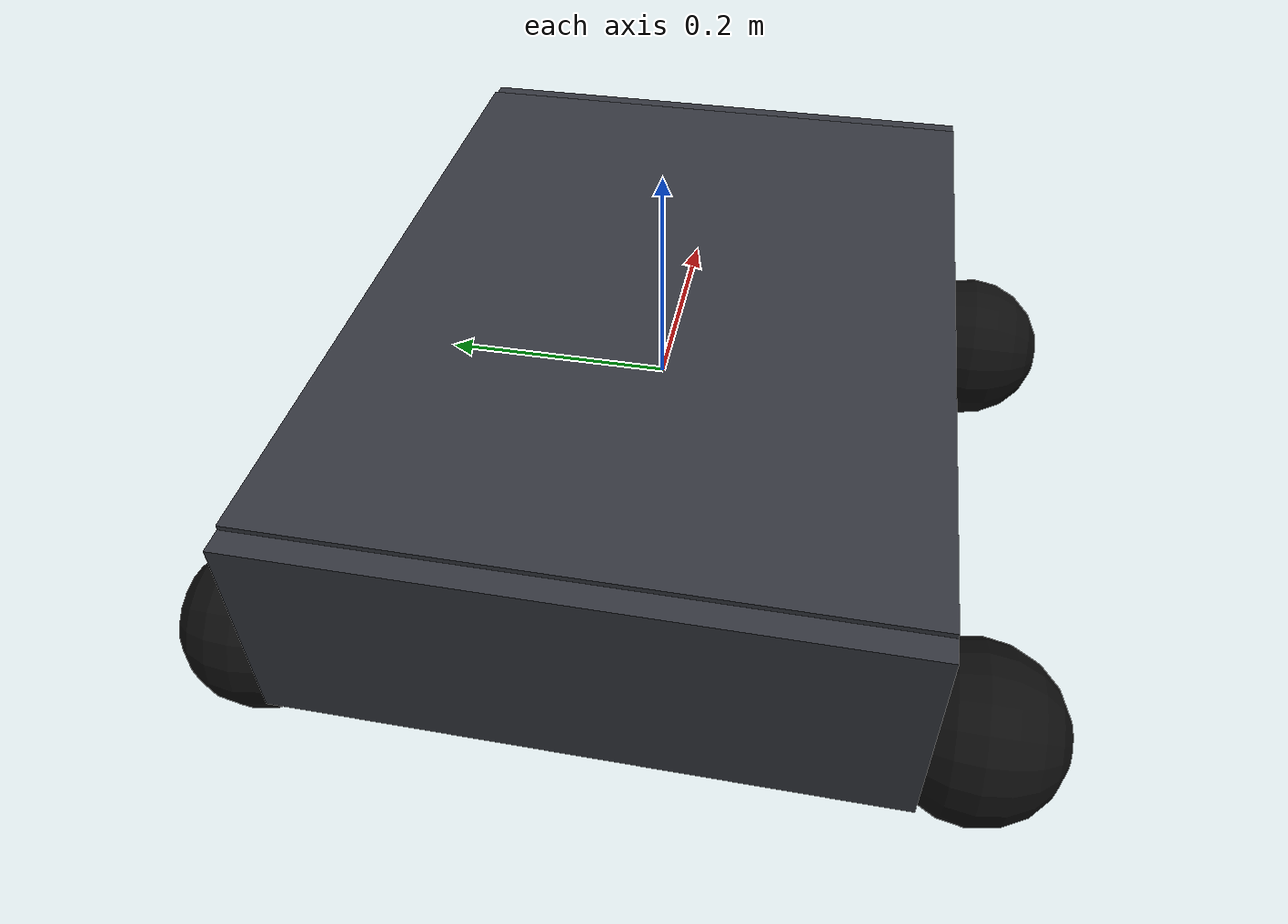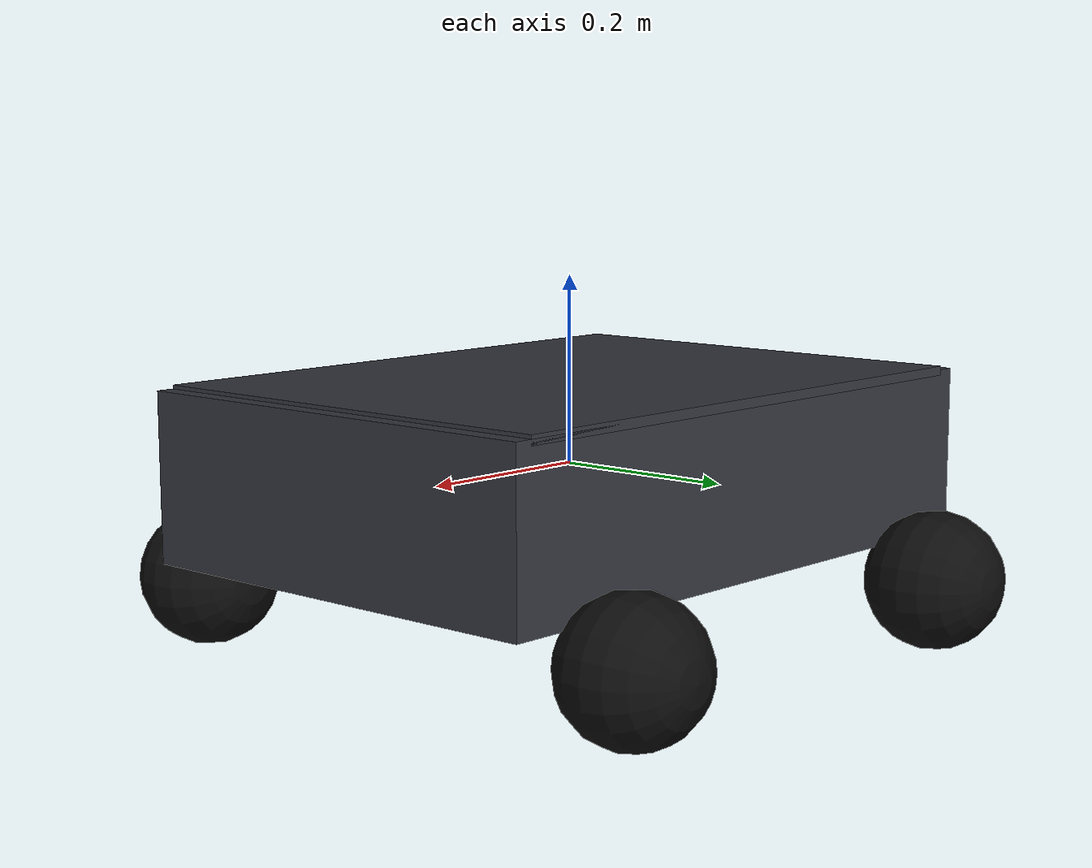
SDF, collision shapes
<?xml version="1.0" ?>
<sdf version="1.9">
  <model name="rover">
      <link name="base_link">
        <pose>0.00000 0.00000 0.00000 0.00000 0.00000 0.00000</pose>
        <inertial><pose>0.00000 0.00000 -0.04000 0.00000 0.00000 0.00000</pose><mass>22.000</mass><inertia><ixx>0.51773</ixx><iyy>0.95773</iyy><izz>1.35667</izz><ixy>0</ixy><ixz>0</ixz><iyz>0</iyz></inertia></inertial>
        <visual name="shell"><pose>0.00000 0.00000 0.00000 0.00000 0.00000 0.00000</pose><geometry><mesh><uri>model://r2d_rover/meshes/body.obj</uri></mesh></geometry><material><ambient>0.12 0.13 0.15 1</ambient><diffuse>0.20 0.21 0.24 1</diffuse><specular>0.35 0.35 0.35 1</specular></material></visual>
        <visual name="deck_plate"><pose>0.00000 0.00000 0.09200 0.00000 0.00000 0.00000</pose><geometry><box><size>0.66000 0.50000 0.00400</size></box></geometry><material><ambient>0.55 0.56 0.58 1</ambient><diffuse>0.80 0.81 0.83 1</diffuse><specular>0.70 0.70 0.70 1</specular></material></visual>
        <visual name="deck_nose_trim"><pose>0.26500 0.00000 0.09250 0.00000 0.00000 0.00000</pose><geometry><box><size>0.13000 0.50000 0.00500</size></box></geometry><material><ambient>0.03 0.03 0.03 1</ambient><diffuse>0.07 0.07 0.07 1</diffuse><specular>0.20 0.20 0.20 1</specular></material></visual>
        <visual name="pad_base"><pose>0.00000 0.00000 0.09600 0.00000 0.00000 0.00000</pose><geometry><box><size>0.46000 0.46000 0.00400</size></box></geometry><material><ambient>0.06 0.07 0.09 1</ambient><diffuse>0.10 0.11 0.14 1</diffuse><specular>0.15 0.15 0.15 1</specular></material></visual>
        <visual name="charge_contact_l"><pose>0.00000 0.13200 0.09850 0.00000 0.00000 0.00000</pose><geometry><box><size>0.30000 0.03000 0.00200</size></box></geometry><material><ambient>0.45 0.25 0.12 1</ambient><diffuse>0.78 0.45 0.22 1</diffuse><specular>0.60 0.50 0.40 1</specular></material></visual>
        <visual name="charge_contact_r"><pose>0.00000 -0.13200 0.09850 0.00000 0.00000 0.00000</pose><geometry><box><size>0.30000 0.03000 0.00200</size></box></geometry><material><ambient>0.45 0.25 0.12 1</ambient><diffuse>0.78 0.45 0.22 1</diffuse><specular>0.60 0.50 0.40 1</specular></material></visual>
        <visual name="pad_H_left"><pose>0.00000 0.04500 0.10080 0.00000 0.00000 0.00000</pose><geometry><box><size>0.14000 0.02500 0.00100</size></box></geometry><material><ambient>0.80 0.80 0.80 1</ambient><diffuse>0.95 0.95 0.95 1</diffuse><specular>0.20 0.20 0.20 1</specular></material></visual>
        <visual name="pad_H_right"><pose>0.00000 -0.04500 0.10080 0.00000 0.00000 0.00000</pose><geometry><box><size>0.14000 0.02500 0.00100</size></box></geometry><material><ambient>0.80 0.80 0.80 1</ambient><diffuse>0.95 0.95 0.95 1</diffuse><specular>0.20 0.20 0.20 1</specular></material></visual>
        <visual name="pad_H_bar"><pose>0.00000 0.00000 0.10080 0.00000 0.00000 0.00000</pose><geometry><box><size>0.02500 0.09000 0.00100</size></box></geometry><material><ambient>0.80 0.80 0.80 1</ambient><diffuse>0.95 0.95 0.95 1</diffuse><specular>0.20 0.20 0.20 1</specular></material></visual>
        <visual name="pad_mark_11_a"><pose>0.19000 0.21000 0.10080 0.00000 0.00000 0.00000</pose><geometry><box><size>0.05000 0.01000 0.00100</size></box></geometry><material><ambient>0.80 0.80 0.80 1</ambient><diffuse>0.95 0.95 0.95 1</diffuse><specular>0.20 0.20 0.20 1</specular></material></visual>
        <visual name="pad_mark_11_b"><pose>0.21000 0.19000 0.10080 0.00000 0.00000 0.00000</pose><geometry><box><size>0.01000 0.05000 0.00100</size></box></geometry><material><ambient>0.80 0.80 0.80 1</ambient><diffuse>0.95 0.95 0.95 1</diffuse><specular>0.20 0.20 0.20 1</specular></material></visual>
        <visual name="pad_mark_1-1_a"><pose>0.19000 -0.21000 0.10080 0.00000 0.00000 0.00000</pose><geometry><box><size>0.05000 0.01000 0.00100</size></box></geometry><material><ambient>0.80 0.80 0.80 1</ambient><diffuse>0.95 0.95 0.95 1</diffuse><specular>0.20 0.20 0.20 1</specular></material></visual>
        <visual name="pad_mark_1-1_b"><pose>0.21000 -0.19000 0.10080 0.00000 0.00000 0.00000</pose><geometry><box><size>0.01000 0.05000 0.00100</size></box></geometry><material><ambient>0.80 0.80 0.80 1</ambient><diffuse>0.95 0.95 0.95 1</diffuse><specular>0.20 0.20 0.20 1</specular></material></visual>
        <visual name="pad_mark_-11_a"><pose>-0.19000 0.21000 0.10080 0.00000 0.00000 0.00000</pose><geometry><box><size>0.05000 0.01000 0.00100</size></box></geometry><material><ambient>0.80 0.80 0.80 1</ambient><diffuse>0.95 0.95 0.95 1</diffuse><specular>0.20 0.20 0.20 1</specular></material></visual>
        <visual name="pad_mark_-11_b"><pose>-0.21000 0.19000 0.10080 0.00000 0.00000 0.00000</pose><geometry><box><size>0.01000 0.05000 0.00100</size></box></geometry><material><ambient>0.80 0.80 0.80 1</ambient><diffuse>0.95 0.95 0.95 1</diffuse><specular>0.20 0.20 0.20 1</specular></material></visual>
        <visual name="pad_mark_-1-1_a"><pose>-0.19000 -0.21000 0.10080 0.00000 0.00000 0.00000</pose><geometry><box><size>0.05000 0.01000 0.00100</size></box></geometry><material><ambient>0.80 0.80 0.80 1</ambient><diffuse>0.95 0.95 0.95 1</diffuse><specular>0.20 0.20 0.20 1</specular></material></visual>
        <visual name="pad_mark_-1-1_b"><pose>-0.21000 -0.19000 0.10080 0.00000 0.00000 0.00000</pose><geometry><box><size>0.01000 0.05000 0.00100</size></box></geometry><material><ambient>0.80 0.80 0.80 1</ambient><diffuse>0.95 0.95 0.95 1</diffuse><specular>0.20 0.20 0.20 1</specular></material></visual>
        <visual name="latch_plate_fl"><pose>0.08000 0.13200 0.10000 0.00000 0.00000 0.00000</pose><geometry><cylinder><radius>0.02400</radius><length>0.00300</length></cylinder></geometry><material><ambient>0.45 0.22 0.02 1</ambient><diffuse>0.85 0.42 0.05 1</diffuse><specular>0.40 0.40 0.40 1</specular></material></visual>
        <visual name="latch_plate_fr"><pose>0.08000 -0.13200 0.10000 0.00000 0.00000 0.00000</pose><geometry><cylinder><radius>0.02400</radius><length>0.00300</length></cylinder></geometry><material><ambient>0.45 0.22 0.02 1</ambient><diffuse>0.85 0.42 0.05 1</diffuse><specular>0.40 0.40 0.40 1</specular></material></visual>
        <visual name="latch_plate_rl"><pose>-0.08000 0.13200 0.10000 0.00000 0.00000 0.00000</pose><geometry><cylinder><radius>0.02400</radius><length>0.00300</length></cylinder></geometry><material><ambient>0.45 0.22 0.02 1</ambient><diffuse>0.85 0.42 0.05 1</diffuse><specular>0.40 0.40 0.40 1</specular></material></visual>
        <visual name="latch_plate_rr"><pose>-0.08000 -0.13200 0.10000 0.00000 0.00000 0.00000</pose><geometry><cylinder><radius>0.02400</radius><length>0.00300</length></cylinder></geometry><material><ambient>0.45 0.22 0.02 1</ambient><diffuse>0.85 0.42 0.05 1</diffuse><specular>0.40 0.40 0.40 1</specular></material></visual>
        <visual name="front_fascia"><pose>0.34398 0.00000 0.00044 -0.00000 -0.11066 0.00000</pose><geometry><box><size>0.00600 0.34000 0.14000</size></box></geometry><material><ambient>0.40 0.41 0.42 1</ambient><diffuse>0.60 0.61 0.62 1</diffuse><specular>0.30 0.30 0.30 1</specular></material></visual>
        <visual name="front_lamp_1"><pose>0.34497 0.13000 0.04583 -0.00000 -0.11066 0.00000</pose><geometry><box><size>0.00800 0.06000 0.02200</size></box></geometry><material><ambient>0.90 0.90 0.85 1</ambient><diffuse>1.00 1.00 0.95 1</diffuse><specular>0.50 0.50 0.50 1</specular><emissive>0.95 0.95 0.85 1</emissive></material></visual>
        <visual name="front_lamp_-1"><pose>0.34497 -0.13000 0.04583 -0.00000 -0.11066 0.00000</pose><geometry><box><size>0.00800 0.06000 0.02200</size></box></geometry><material><ambient>0.90 0.90 0.85 1</ambient><diffuse>1.00 1.00 0.95 1</diffuse><specular>0.50 0.50 0.50 1</specular><emissive>0.95 0.95 0.85 1</emissive></material></visual>
        <visual name="front_xt90"><pose>0.35325 0.13000 -0.02871 -0.00000 -0.11066 0.00000</pose><geometry><box><size>0.01200 0.03500 0.01800</size></box></geometry><material><ambient>0.70 0.52 0.05 1</ambient><diffuse>0.95 0.72 0.08 1</diffuse><specular>0.30 0.30 0.30 1</specular></material></visual>
        <visual name="front_estop"><pose>0.35325 0.08000 -0.02871 -0.00000 -0.11066 0.00000</pose><geometry><box><size>0.01200 0.03000 0.03000</size></box></geometry><material><ambient>0.50 0.03 0.03 1</ambient><diffuse>0.85 0.06 0.06 1</diffuse><specular>0.30 0.30 0.30 1</specular><emissive>0.60 0.02 0.02 1</emissive></material></visual>
        <visual name="front_sw_a"><pose>0.35325 0.03000 -0.02871 -0.00000 -0.11066 0.00000</pose><geometry><box><size>0.01200 0.02000 0.03000</size></box></geometry><material><ambient>0.03 0.03 0.03 1</ambient><diffuse>0.07 0.07 0.07 1</diffuse><specular>0.20 0.20 0.20 1</specular></material></visual>
        <visual name="front_sw_b"><pose>0.35325 -0.01000 -0.02871 -0.00000 -0.11066 0.00000</pose><geometry><box><size>0.01200 0.02000 0.03000</size></box></geometry><material><ambient>0.03 0.03 0.03 1</ambient><diffuse>0.07 0.07 0.07 1</diffuse><specular>0.20 0.20 0.20 1</specular></material></visual>
        <visual name="front_fan"><pose>0.35325 -0.10000 -0.02871 1.46014 -0.00000 1.57080</pose><geometry><cylinder><radius>0.02500</radius><length>0.01000</length></cylinder></geometry><material><ambient>0.03 0.03 0.03 1</ambient><diffuse>0.07 0.07 0.07 1</diffuse><specular>0.20 0.20 0.20 1</specular></material></visual>
        <visual name="front_cam_housing"><pose>0.35546 0.00000 0.04196 -0.00000 -0.11066 0.00000</pose><geometry><box><size>0.03000 0.07000 0.03000</size></box></geometry><material><ambient>0.03 0.03 0.03 1</ambient><diffuse>0.07 0.07 0.07 1</diffuse><specular>0.20 0.20 0.20 1</specular></material></visual>
        <visual name="front_cam_lens"><pose>0.37335 0.00000 0.04395 1.46014 -0.00000 1.57080</pose><geometry><cylinder><radius>0.01000</radius><length>0.01000</length></cylinder></geometry><material><ambient>0.02 0.02 0.05 1</ambient><diffuse>0.05 0.05 0.12 1</diffuse><specular>0.90 0.90 0.90 1</specular></material></visual>
        <visual name="rear_fascia"><pose>-0.34398 0.00000 0.00044 0.00000 -0.11066 3.14159</pose><geometry><box><size>0.00600 0.34000 0.14000</size></box></geometry><material><ambient>0.40 0.41 0.42 1</ambient><diffuse>0.60 0.61 0.62 1</diffuse><specular>0.30 0.30 0.30 1</specular></material></visual>
        <visual name="rear_lamp_1"><pose>-0.34497 0.13000 0.04583 0.00000 -0.11066 3.14159</pose><geometry><box><size>0.00800 0.06000 0.02200</size></box></geometry><material><ambient>0.50 0.03 0.03 1</ambient><diffuse>0.85 0.06 0.06 1</diffuse><specular>0.30 0.30 0.30 1</specular><emissive>0.60 0.02 0.02 1</emissive></material></visual>
        <visual name="rear_lamp_-1"><pose>-0.34497 -0.13000 0.04583 0.00000 -0.11066 3.14159</pose><geometry><box><size>0.00800 0.06000 0.02200</size></box></geometry><material><ambient>0.50 0.03 0.03 1</ambient><diffuse>0.85 0.06 0.06 1</diffuse><specular>0.30 0.30 0.30 1</specular><emissive>0.60 0.02 0.02 1</emissive></material></visual>
        <visual name="left_vent_fwd_0"><pose>0.17000 0.23967 0.03015 0.11066 -0.00000 0.00000</pose><geometry><box><size>0.10000 0.00400 0.00800</size></box></geometry><material><ambient>0.03 0.03 0.03 1</ambient><diffuse>0.07 0.07 0.07 1</diffuse><specular>0.20 0.20 0.20 1</specular></material></visual>
        <visual name="left_vent_fwd_1"><pose>0.17000 0.24166 0.01226 0.11066 -0.00000 0.00000</pose><geometry><box><size>0.10000 0.00400 0.00800</size></box></geometry><material><ambient>0.03 0.03 0.03 1</ambient><diffuse>0.07 0.07 0.07 1</diffuse><specular>0.20 0.20 0.20 1</specular></material></visual>
        <visual name="left_vent_fwd_2"><pose>0.17000 0.24364 -0.00563 0.11066 -0.00000 0.00000</pose><geometry><box><size>0.10000 0.00400 0.00800</size></box></geometry><material><ambient>0.03 0.03 0.03 1</ambient><diffuse>0.07 0.07 0.07 1</diffuse><specular>0.20 0.20 0.20 1</specular></material></visual>
        <visual name="left_vent_fwd_3"><pose>0.17000 0.24563 -0.02352 0.11066 -0.00000 0.00000</pose><geometry><box><size>0.10000 0.00400 0.00800</size></box></geometry><material><ambient>0.03 0.03 0.03 1</ambient><diffuse>0.07 0.07 0.07 1</diffuse><specular>0.20 0.20 0.20 1</specular></material></visual>
        <visual name="left_vent_aft_0"><pose>-0.17000 0.23967 0.03015 0.11066 -0.00000 0.00000</pose><geometry><box><size>0.10000 0.00400 0.00800</size></box></geometry><material><ambient>0.03 0.03 0.03 1</ambient><diffuse>0.07 0.07 0.07 1</diffuse><specular>0.20 0.20 0.20 1</specular></material></visual>
        <visual name="left_vent_aft_1"><pose>-0.17000 0.24166 0.01226 0.11066 -0.00000 0.00000</pose><geometry><box><size>0.10000 0.00400 0.00800</size></box></geometry><material><ambient>0.03 0.03 0.03 1</ambient><diffuse>0.07 0.07 0.07 1</diffuse><specular>0.20 0.20 0.20 1</specular></material></visual>
        <visual name="left_vent_aft_2"><pose>-0.17000 0.24364 -0.00563 0.11066 -0.00000 0.00000</pose><geometry><box><size>0.10000 0.00400 0.00800</size></box></geometry><material><ambient>0.03 0.03 0.03 1</ambient><diffuse>0.07 0.07 0.07 1</diffuse><specular>0.20 0.20 0.20 1</specular></material></visual>
        <visual name="left_vent_aft_3"><pose>-0.17000 0.24563 -0.02352 0.11066 -0.00000 0.00000</pose><geometry><box><size>0.10000 0.00400 0.00800</size></box></geometry><material><ambient>0.03 0.03 0.03 1</ambient><diffuse>0.07 0.07 0.07 1</diffuse><specular>0.20 0.20 0.20 1</specular></material></visual>
        <visual name="left_grommet_p"><pose>0.05000 0.24077 0.02021 -1.46014 -0.00000 0.00000</pose><geometry><cylinder><radius>0.01500</radius><length>0.00600</length></cylinder></geometry><material><ambient>0.03 0.03 0.03 1</ambient><diffuse>0.07 0.07 0.07 1</diffuse><specular>0.20 0.20 0.20 1</specular></material></visual>
        <visual name="left_grommet_n"><pose>-0.05000 0.24077 0.02021 -1.46014 -0.00000 0.00000</pose><geometry><cylinder><radius>0.01500</radius><length>0.00600</length></cylinder></geometry><material><ambient>0.03 0.03 0.03 1</ambient><diffuse>0.07 0.07 0.07 1</diffuse><specular>0.20 0.20 0.20 1</specular></material></visual>
        <visual name="right_vent_fwd_0"><pose>0.17000 -0.23967 0.03015 -0.11066 -0.00000 0.00000</pose><geometry><box><size>0.10000 0.00400 0.00800</size></box></geometry><material><ambient>0.03 0.03 0.03 1</ambient><diffuse>0.07 0.07 0.07 1</diffuse><specular>0.20 0.20 0.20 1</specular></material></visual>
        <visual name="right_vent_fwd_1"><pose>0.17000 -0.24166 0.01226 -0.11066 -0.00000 0.00000</pose><geometry><box><size>0.10000 0.00400 0.00800</size></box></geometry><material><ambient>0.03 0.03 0.03 1</ambient><diffuse>0.07 0.07 0.07 1</diffuse><specular>0.20 0.20 0.20 1</specular></material></visual>
        <visual name="right_vent_fwd_2"><pose>0.17000 -0.24364 -0.00563 -0.11066 -0.00000 0.00000</pose><geometry><box><size>0.10000 0.00400 0.00800</size></box></geometry><material><ambient>0.03 0.03 0.03 1</ambient><diffuse>0.07 0.07 0.07 1</diffuse><specular>0.20 0.20 0.20 1</specular></material></visual>
        <visual name="right_vent_fwd_3"><pose>0.17000 -0.24563 -0.02352 -0.11066 -0.00000 0.00000</pose><geometry><box><size>0.10000 0.00400 0.00800</size></box></geometry><material><ambient>0.03 0.03 0.03 1</ambient><diffuse>0.07 0.07 0.07 1</diffuse><specular>0.20 0.20 0.20 1</specular></material></visual>
        <visual name="right_vent_aft_0"><pose>-0.17000 -0.23967 0.03015 -0.11066 -0.00000 0.00000</pose><geometry><box><size>0.10000 0.00400 0.00800</size></box></geometry><material><ambient>0.03 0.03 0.03 1</ambient><diffuse>0.07 0.07 0.07 1</diffuse><specular>0.20 0.20 0.20 1</specular></material></visual>
        <visual name="right_vent_aft_1"><pose>-0.17000 -0.24166 0.01226 -0.11066 -0.00000 0.00000</pose><geometry><box><size>0.10000 0.00400 0.00800</size></box></geometry><material><ambient>0.03 0.03 0.03 1</ambient><diffuse>0.07 0.07 0.07 1</diffuse><specular>0.20 0.20 0.20 1</specular></material></visual>
        <visual name="right_vent_aft_2"><pose>-0.17000 -0.24364 -0.00563 -0.11066 -0.00000 0.00000</pose><geometry><box><size>0.10000 0.00400 0.00800</size></box></geometry><material><ambient>0.03 0.03 0.03 1</ambient><diffuse>0.07 0.07 0.07 1</diffuse><specular>0.20 0.20 0.20 1</specular></material></visual>
        <visual name="right_vent_aft_3"><pose>-0.17000 -0.24563 -0.02352 -0.11066 -0.00000 0.00000</pose><geometry><box><size>0.10000 0.00400 0.00800</size></box></geometry><material><ambient>0.03 0.03 0.03 1</ambient><diffuse>0.07 0.07 0.07 1</diffuse><specular>0.20 0.20 0.20 1</specular></material></visual>
        <visual name="right_grommet_p"><pose>0.05000 -0.24077 0.02021 1.46014 -0.00000 0.00000</pose><geometry><cylinder><radius>0.01500</radius><length>0.00600</length></cylinder></geometry><material><ambient>0.03 0.03 0.03 1</ambient><diffuse>0.07 0.07 0.07 1</diffuse><specular>0.20 0.20 0.20 1</specular></material></visual>
        <visual name="right_grommet_n"><pose>-0.05000 -0.24077 0.02021 1.46014 -0.00000 0.00000</pose><geometry><cylinder><radius>0.01500</radius><length>0.00600</length></cylinder></geometry><material><ambient>0.03 0.03 0.03 1</ambient><diffuse>0.07 0.07 0.07 1</diffuse><specular>0.20 0.20 0.20 1</specular></material></visual>
        <visual name="front_bumper"><pose>0.45000 0.00000 -0.04000 0.00000 0.00000 0.00000</pose><geometry><box><size>0.02000 0.40000 0.04000</size></box></geometry><material><ambient>0.55 0.56 0.58 1</ambient><diffuse>0.80 0.81 0.83 1</diffuse><specular>0.70 0.70 0.70 1</specular></material></visual>
        <visual name="front_standoff_1"><pose>0.40000 0.18000 -0.04000 0.00000 0.00000 0.00000</pose><geometry><box><size>0.10000 0.02000 0.02000</size></box></geometry><material><ambient>0.55 0.56 0.58 1</ambient><diffuse>0.80 0.81 0.83 1</diffuse><specular>0.70 0.70 0.70 1</specular></material></visual>
        <visual name="front_standoff_-1"><pose>0.40000 -0.18000 -0.04000 0.00000 0.00000 0.00000</pose><geometry><box><size>0.10000 0.02000 0.02000</size></box></geometry><material><ambient>0.55 0.56 0.58 1</ambient><diffuse>0.80 0.81 0.83 1</diffuse><specular>0.70 0.70 0.70 1</specular></material></visual>
        <visual name="rear_bumper"><pose>-0.45000 0.00000 -0.04000 0.00000 0.00000 0.00000</pose><geometry><box><size>0.02000 0.40000 0.04000</size></box></geometry><material><ambient>0.55 0.56 0.58 1</ambient><diffuse>0.80 0.81 0.83 1</diffuse><specular>0.70 0.70 0.70 1</specular></material></visual>
        <visual name="rear_standoff_1"><pose>-0.40000 0.18000 -0.04000 0.00000 0.00000 0.00000</pose><geometry><box><size>0.10000 0.02000 0.02000</size></box></geometry><material><ambient>0.55 0.56 0.58 1</ambient><diffuse>0.80 0.81 0.83 1</diffuse><specular>0.70 0.70 0.70 1</specular></material></visual>
        <visual name="rear_standoff_-1"><pose>-0.40000 -0.18000 -0.04000 0.00000 0.00000 0.00000</pose><geometry><box><size>0.10000 0.02000 0.02000</size></box></geometry><material><ambient>0.55 0.56 0.58 1</ambient><diffuse>0.80 0.81 0.83 1</diffuse><specular>0.70 0.70 0.70 1</specular></material></visual>
        <visual name="gnss_mast"><pose>-0.45000 -0.19000 0.22700 0.00000 0.00000 0.00000</pose><geometry><cylinder><radius>0.01000</radius><length>0.53400</length></cylinder></geometry><material><ambient>0.55 0.56 0.58 1</ambient><diffuse>0.80 0.81 0.83 1</diffuse><specular>0.70 0.70 0.70 1</specular></material></visual>
        <visual name="comms_mast"><pose>-0.45000 0.19000 0.22700 0.00000 0.00000 0.00000</pose><geometry><cylinder><radius>0.01000</radius><length>0.53400</length></cylinder></geometry><material><ambient>0.55 0.56 0.58 1</ambient><diffuse>0.80 0.81 0.83 1</diffuse><specular>0.70 0.70 0.70 1</specular></material></visual>
        <visual name="gnss_puck"><pose>-0.45000 -0.19000 0.50300 0.00000 0.00000 0.00000</pose><geometry><cylinder><radius>0.04000</radius><length>0.01800</length></cylinder></geometry><material><ambient>0.80 0.80 0.80 1</ambient><diffuse>0.95 0.95 0.95 1</diffuse><specular>0.20 0.20 0.20 1</specular></material></visual>
        <visual name="comms_base"><pose>-0.45000 0.19000 0.50400 0.00000 0.00000 0.00000</pose><geometry><cylinder><radius>0.01500</radius><length>0.02000</length></cylinder></geometry><material><ambient>0.03 0.03 0.03 1</ambient><diffuse>0.07 0.07 0.07 1</diffuse><specular>0.20 0.20 0.20 1</specular></material></visual>
        <visual name="comms_whip"><pose>-0.45000 0.19000 0.61400 0.00000 0.00000 0.00000</pose><geometry><cylinder><radius>0.00500</radius><length>0.20000</length></cylinder></geometry><material><ambient>0.03 0.03 0.03 1</ambient><diffuse>0.07 0.07 0.07 1</diffuse><specular>0.20 0.20 0.20 1</specular></material></visual>
        <visual name="lidar_base"><pose>0.29000 0.00000 0.10900 0.00000 0.00000 0.00000</pose><geometry><cylinder><radius>0.03500</radius><length>0.03000</length></cylinder></geometry><material><ambient>0.03 0.03 0.03 1</ambient><diffuse>0.07 0.07 0.07 1</diffuse><specular>0.20 0.20 0.20 1</specular></material></visual>
        <visual name="lidar_head"><pose>0.29000 0.00000 0.12900 0.00000 0.00000 0.00000</pose><geometry><cylinder><radius>0.03000</radius><length>0.02000</length></cylinder></geometry><material><ambient>0.25 0.26 0.28 1</ambient><diffuse>0.38 0.39 0.42 1</diffuse><specular>0.40 0.40 0.40 1</specular></material></visual>
        <visual name="bracket_fl"><pose>0.25000 0.23000 -0.10750 0.00000 0.00000 0.00000</pose><geometry><box><size>0.06000 0.00800 0.06500</size></box></geometry><material><ambient>0.03 0.03 0.03 1</ambient><diffuse>0.07 0.07 0.07 1</diffuse><specular>0.20 0.20 0.20 1</specular></material></visual>
        <visual name="gearbox_fl"><pose>0.25000 0.20000 -0.12500 1.57080 0.00000 0.00000</pose><geometry><cylinder><radius>0.02250</radius><length>0.06000</length></cylinder></geometry><material><ambient>0.25 0.26 0.28 1</ambient><diffuse>0.38 0.39 0.42 1</diffuse><specular>0.40 0.40 0.40 1</specular></material></visual>
        <visual name="motor_fl"><pose>0.25000 0.13000 -0.12500 1.57080 0.00000 0.00000</pose><geometry><cylinder><radius>0.02000</radius><length>0.08000</length></cylinder></geometry><material><ambient>0.03 0.03 0.03 1</ambient><diffuse>0.07 0.07 0.07 1</diffuse><specular>0.20 0.20 0.20 1</specular></material></visual>
        <visual name="axle_fl"><pose>0.25000 0.26500 -0.12500 1.57080 0.00000 0.00000</pose><geometry><cylinder><radius>0.00600</radius><length>0.07000</length></cylinder></geometry><material><ambient>0.55 0.56 0.58 1</ambient><diffuse>0.80 0.81 0.83 1</diffuse><specular>0.70 0.70 0.70 1</specular></material></visual>
        <visual name="bracket_fr"><pose>0.25000 -0.23000 -0.10750 0.00000 0.00000 0.00000</pose><geometry><box><size>0.06000 0.00800 0.06500</size></box></geometry><material><ambient>0.03 0.03 0.03 1</ambient><diffuse>0.07 0.07 0.07 1</diffuse><specular>0.20 0.20 0.20 1</specular></material></visual>
        <visual name="gearbox_fr"><pose>0.25000 -0.20000 -0.12500 1.57080 0.00000 0.00000</pose><geometry><cylinder><radius>0.02250</radius><length>0.06000</length></cylinder></geometry><material><ambient>0.25 0.26 0.28 1</ambient><diffuse>0.38 0.39 0.42 1</diffuse><specular>0.40 0.40 0.40 1</specular></material></visual>
        <visual name="motor_fr"><pose>0.25000 -0.13000 -0.12500 1.57080 0.00000 0.00000</pose><geometry><cylinder><radius>0.02000</radius><length>0.08000</length></cylinder></geometry><material><ambient>0.03 0.03 0.03 1</ambient><diffuse>0.07 0.07 0.07 1</diffuse><specular>0.20 0.20 0.20 1</specular></material></visual>
        <visual name="axle_fr"><pose>0.25000 -0.26500 -0.12500 1.57080 0.00000 0.00000</pose><geometry><cylinder><radius>0.00600</radius><length>0.07000</length></cylinder></geometry><material><ambient>0.55 0.56 0.58 1</ambient><diffuse>0.80 0.81 0.83 1</diffuse><specular>0.70 0.70 0.70 1</specular></material></visual>
        <visual name="bracket_rl"><pose>-0.25000 0.23000 -0.10750 0.00000 0.00000 0.00000</pose><geometry><box><size>0.06000 0.00800 0.06500</size></box></geometry><material><ambient>0.03 0.03 0.03 1</ambient><diffuse>0.07 0.07 0.07 1</diffuse><specular>0.20 0.20 0.20 1</specular></material></visual>
        <visual name="gearbox_rl"><pose>-0.25000 0.20000 -0.12500 1.57080 0.00000 0.00000</pose><geometry><cylinder><radius>0.02250</radius><length>0.06000</length></cylinder></geometry><material><ambient>0.25 0.26 0.28 1</ambient><diffuse>0.38 0.39 0.42 1</diffuse><specular>0.40 0.40 0.40 1</specular></material></visual>
        <visual name="motor_rl"><pose>-0.25000 0.13000 -0.12500 1.57080 0.00000 0.00000</pose><geometry><cylinder><radius>0.02000</radius><length>0.08000</length></cylinder></geometry><material><ambient>0.03 0.03 0.03 1</ambient><diffuse>0.07 0.07 0.07 1</diffuse><specular>0.20 0.20 0.20 1</specular></material></visual>
        <visual name="axle_rl"><pose>-0.25000 0.26500 -0.12500 1.57080 0.00000 0.00000</pose><geometry><cylinder><radius>0.00600</radius><length>0.07000</length></cylinder></geometry><material><ambient>0.55 0.56 0.58 1</ambient><diffuse>0.80 0.81 0.83 1</diffuse><specular>0.70 0.70 0.70 1</specular></material></visual>
        <visual name="bracket_rr"><pose>-0.25000 -0.23000 -0.10750 0.00000 0.00000 0.00000</pose><geometry><box><size>0.06000 0.00800 0.06500</size></box></geometry><material><ambient>0.03 0.03 0.03 1</ambient><diffuse>0.07 0.07 0.07 1</diffuse><specular>0.20 0.20 0.20 1</specular></material></visual>
        <visual name="gearbox_rr"><pose>-0.25000 -0.20000 -0.12500 1.57080 0.00000 0.00000</pose><geometry><cylinder><radius>0.02250</radius><length>0.06000</length></cylinder></geometry><material><ambient>0.25 0.26 0.28 1</ambient><diffuse>0.38 0.39 0.42 1</diffuse><specular>0.40 0.40 0.40 1</specular></material></visual>
        <visual name="motor_rr"><pose>-0.25000 -0.13000 -0.12500 1.57080 0.00000 0.00000</pose><geometry><cylinder><radius>0.02000</radius><length>0.08000</length></cylinder></geometry><material><ambient>0.03 0.03 0.03 1</ambient><diffuse>0.07 0.07 0.07 1</diffuse><specular>0.20 0.20 0.20 1</specular></material></visual>
        <visual name="axle_rr"><pose>-0.25000 -0.26500 -0.12500 1.57080 0.00000 0.00000</pose><geometry><cylinder><radius>0.00600</radius><length>0.07000</length></cylinder></geometry><material><ambient>0.55 0.56 0.58 1</ambient><diffuse>0.80 0.81 0.83 1</diffuse><specular>0.70 0.70 0.70 1</specular></material></visual>
        <collision name="body_collision"><pose>0.00000 0.00000 0.00000 0.00000 0.00000 0.00000</pose><geometry><box><size>0.7 0.5 0.18</size></box></geometry></collision>
        <collision name="deck_collision"><pose>0.00000 0.00000 0.08900 0.00000 0.00000 0.00000</pose><geometry><box><size>0.66 0.5 0.010</size></box></geometry><surface><friction><ode><mu>1.6</mu><mu2>1.6</mu2></ode></friction></surface></collision>
        <sensor name="imu" type="imu">
          <pose>0.00000 0.00000 0.00000 0.00000 0.00000 0.00000</pose>
          <always_on>1</always_on><update_rate>100</update_rate>
          <topic>/rover/imu</topic>
          <gz_frame_id>rover/imu_link</gz_frame_id>
          <imu><angular_velocity><x><noise type="gaussian"><mean>0</mean><stddev>0.005</stddev><bias_mean>0.0002</bias_mean></noise></x><y><noise type="gaussian"><mean>0</mean><stddev>0.005</stddev><bias_mean>0.0002</bias_mean></noise></y><z><noise type="gaussian"><mean>0</mean><stddev>0.005</stddev><bias_mean>0.0002</bias_mean></noise></z></angular_velocity>
            <linear_acceleration><x><noise type="gaussian"><mean>0</mean><stddev>0.02</stddev><bias_mean>0.01</bias_mean></noise></x><y><noise type="gaussian"><mean>0</mean><stddev>0.02</stddev><bias_mean>0.01</bias_mean></noise></y><z><noise type="gaussian"><mean>0</mean><stddev>0.02</stddev><bias_mean>0.01</bias_mean></noise></z></linear_acceleration></imu>
        </sensor>
        <sensor name="navsat" type="navsat">
          <pose>-0.45000 -0.19000 0.50400 0.00000 0.00000 0.00000</pose>
          <always_on>1</always_on><update_rate>5</update_rate>
          <topic>/rover/navsat</topic>
          <gz_frame_id>rover/gnss_link</gz_frame_id>
          <navsat>
            <position_sensing>
              <horizontal><noise type="gaussian"><mean>0</mean><stddev>1.0779734099892202e-05</stddev></noise></horizontal>
              <vertical><noise type="gaussian"><mean>0</mean><stddev>2.0</stddev></noise></vertical>
            </position_sensing>
            <velocity_sensing>
              <horizontal><noise type="gaussian"><mean>0</mean><stddev>0.05</stddev></noise></horizontal>
              <vertical><noise type="gaussian"><mean>0</mean><stddev>0.08</stddev></noise></vertical>
            </velocity_sensing>
          </navsat>
        </sensor>
        <sensor name="lidar" type="gpu_lidar">
          <pose>0.29000 0.00000 0.12900 0.00000 0.00000 0.00000</pose>
          <always_on>1</always_on><update_rate>10</update_rate>
          <visualize>false</visualize>
          <topic>/rover/scan</topic>
          <gz_frame_id>rover/lidar_link</gz_frame_id>
          <lidar>
            <scan><horizontal><samples>360</samples><resolution>1</resolution>
              <min_angle>-3.14159</min_angle><max_angle>3.14159</max_angle>
            </horizontal></scan>
            <range><min>0.15</min><max>12.0</max><resolution>0.01</resolution></range>
            <noise type="gaussian"><mean>0</mean><stddev>0.01</stddev></noise>
          </lidar>
        </sensor>
      </link>
      <link name="wheel_fl">
        <pose>0.25000 0.30000 -0.12500 -1.57080 0.00000 0.00000</pose>
        <inertial><pose>0.00000 0.00000 0.00000 0.00000 0.00000 0.00000</pose><mass>0.350</mass><inertia><ixx>0.00057</ixx><iyy>0.00057</iyy><izz>0.00098</izz><ixy>0</ixy><ixz>0</ixz><iyz>0</iyz></inertia></inertial>
        <visual name="tyre"><pose>0.00000 0.00000 0.00000 0.00000 0.00000 0.00000</pose><geometry><mesh><uri>model://r2d_rover/meshes/tyre.obj</uri></mesh></geometry><material><ambient>0.03 0.03 0.03 1</ambient><diffuse>0.05 0.05 0.05 1</diffuse><specular>0.05 0.05 0.05 1</specular></material></visual>
        <visual name="hub_disc"><pose>0.00000 0.00000 0.02200 0.00000 0.00000 0.00000</pose><geometry><cylinder><radius>0.04800</radius><length>0.00600</length></cylinder></geometry><material><ambient>0.25 0.26 0.28 1</ambient><diffuse>0.38 0.39 0.42 1</diffuse><specular>0.40 0.40 0.40 1</specular></material></visual>
        <visual name="spoke_0"><pose>0.02475 0.00000 0.02600 0.00000 0.00000 0.00000</pose><geometry><box><size>0.03600 0.01200 0.00600</size></box></geometry><material><ambient>0.40 0.41 0.42 1</ambient><diffuse>0.60 0.61 0.62 1</diffuse><specular>0.30 0.30 0.30 1</specular></material></visual>
        <visual name="spoke_1"><pose>0.00765 0.02354 0.02600 0.00000 0.00000 1.25664</pose><geometry><box><size>0.03600 0.01200 0.00600</size></box></geometry><material><ambient>0.40 0.41 0.42 1</ambient><diffuse>0.60 0.61 0.62 1</diffuse><specular>0.30 0.30 0.30 1</specular></material></visual>
        <visual name="spoke_2"><pose>-0.02002 0.01455 0.02600 0.00000 0.00000 2.51327</pose><geometry><box><size>0.03600 0.01200 0.00600</size></box></geometry><material><ambient>0.40 0.41 0.42 1</ambient><diffuse>0.60 0.61 0.62 1</diffuse><specular>0.30 0.30 0.30 1</specular></material></visual>
        <visual name="spoke_3"><pose>-0.02002 -0.01455 0.02600 0.00000 0.00000 3.76991</pose><geometry><box><size>0.03600 0.01200 0.00600</size></box></geometry><material><ambient>0.40 0.41 0.42 1</ambient><diffuse>0.60 0.61 0.62 1</diffuse><specular>0.30 0.30 0.30 1</specular></material></visual>
        <visual name="spoke_4"><pose>0.00765 -0.02354 0.02600 0.00000 0.00000 5.02655</pose><geometry><box><size>0.03600 0.01200 0.00600</size></box></geometry><material><ambient>0.40 0.41 0.42 1</ambient><diffuse>0.60 0.61 0.62 1</diffuse><specular>0.30 0.30 0.30 1</specular></material></visual>
        <visual name="hub_cap"><pose>0.00000 0.00000 0.02900 0.00000 0.00000 0.00000</pose><geometry><cylinder><radius>0.01400</radius><length>0.01200</length></cylinder></geometry><material><ambient>0.55 0.56 0.58 1</ambient><diffuse>0.80 0.81 0.83 1</diffuse><specular>0.70 0.70 0.70 1</specular></material></visual>
        <collision name="collision"><pose>0.00000 0.00000 0.00000 0.00000 0.00000 0.00000</pose><geometry><sphere><radius>0.075</radius></sphere></geometry><surface><friction><ode><mu>0.8</mu><mu2>0.8</mu2></ode></friction></surface></collision>
      </link>
      <link name="wheel_fr">
        <pose>0.25000 -0.30000 -0.12500 -1.57080 0.00000 0.00000</pose>
        <inertial><pose>0.00000 0.00000 0.00000 0.00000 0.00000 0.00000</pose><mass>0.350</mass><inertia><ixx>0.00057</ixx><iyy>0.00057</iyy><izz>0.00098</izz><ixy>0</ixy><ixz>0</ixz><iyz>0</iyz></inertia></inertial>
        <visual name="tyre"><pose>0.00000 0.00000 0.00000 0.00000 0.00000 0.00000</pose><geometry><mesh><uri>model://r2d_rover/meshes/tyre.obj</uri></mesh></geometry><material><ambient>0.03 0.03 0.03 1</ambient><diffuse>0.05 0.05 0.05 1</diffuse><specular>0.05 0.05 0.05 1</specular></material></visual>
        <visual name="hub_disc"><pose>0.00000 0.00000 -0.02200 0.00000 0.00000 0.00000</pose><geometry><cylinder><radius>0.04800</radius><length>0.00600</length></cylinder></geometry><material><ambient>0.25 0.26 0.28 1</ambient><diffuse>0.38 0.39 0.42 1</diffuse><specular>0.40 0.40 0.40 1</specular></material></visual>
        <visual name="spoke_0"><pose>0.02475 0.00000 -0.02600 0.00000 0.00000 0.00000</pose><geometry><box><size>0.03600 0.01200 0.00600</size></box></geometry><material><ambient>0.40 0.41 0.42 1</ambient><diffuse>0.60 0.61 0.62 1</diffuse><specular>0.30 0.30 0.30 1</specular></material></visual>
        <visual name="spoke_1"><pose>0.00765 0.02354 -0.02600 0.00000 0.00000 1.25664</pose><geometry><box><size>0.03600 0.01200 0.00600</size></box></geometry><material><ambient>0.40 0.41 0.42 1</ambient><diffuse>0.60 0.61 0.62 1</diffuse><specular>0.30 0.30 0.30 1</specular></material></visual>
        <visual name="spoke_2"><pose>-0.02002 0.01455 -0.02600 0.00000 0.00000 2.51327</pose><geometry><box><size>0.03600 0.01200 0.00600</size></box></geometry><material><ambient>0.40 0.41 0.42 1</ambient><diffuse>0.60 0.61 0.62 1</diffuse><specular>0.30 0.30 0.30 1</specular></material></visual>
        <visual name="spoke_3"><pose>-0.02002 -0.01455 -0.02600 0.00000 0.00000 3.76991</pose><geometry><box><size>0.03600 0.01200 0.00600</size></box></geometry><material><ambient>0.40 0.41 0.42 1</ambient><diffuse>0.60 0.61 0.62 1</diffuse><specular>0.30 0.30 0.30 1</specular></material></visual>
        <visual name="spoke_4"><pose>0.00765 -0.02354 -0.02600 0.00000 0.00000 5.02655</pose><geometry><box><size>0.03600 0.01200 0.00600</size></box></geometry><material><ambient>0.40 0.41 0.42 1</ambient><diffuse>0.60 0.61 0.62 1</diffuse><specular>0.30 0.30 0.30 1</specular></material></visual>
        <visual name="hub_cap"><pose>0.00000 0.00000 -0.02900 0.00000 0.00000 0.00000</pose><geometry><cylinder><radius>0.01400</radius><length>0.01200</length></cylinder></geometry><material><ambient>0.55 0.56 0.58 1</ambient><diffuse>0.80 0.81 0.83 1</diffuse><specular>0.70 0.70 0.70 1</specular></material></visual>
        <collision name="collision"><pose>0.00000 0.00000 0.00000 0.00000 0.00000 0.00000</pose><geometry><sphere><radius>0.075</radius></sphere></geometry><surface><friction><ode><mu>0.8</mu><mu2>0.8</mu2></ode></friction></surface></collision>
      </link>
      <link name="wheel_rl">
        <pose>-0.25000 0.30000 -0.12500 -1.57080 0.00000 0.00000</pose>
        <inertial><pose>0.00000 0.00000 0.00000 0.00000 0.00000 0.00000</pose><mass>0.350</mass><inertia><ixx>0.00057</ixx><iyy>0.00057</iyy><izz>0.00098</izz><ixy>0</ixy><ixz>0</ixz><iyz>0</iyz></inertia></inertial>
        <visual name="tyre"><pose>0.00000 0.00000 0.00000 0.00000 0.00000 0.00000</pose><geometry><mesh><uri>model://r2d_rover/meshes/tyre.obj</uri></mesh></geometry><material><ambient>0.03 0.03 0.03 1</ambient><diffuse>0.05 0.05 0.05 1</diffuse><specular>0.05 0.05 0.05 1</specular></material></visual>
        <visual name="hub_disc"><pose>0.00000 0.00000 0.02200 0.00000 0.00000 0.00000</pose><geometry><cylinder><radius>0.04800</radius><length>0.00600</length></cylinder></geometry><material><ambient>0.25 0.26 0.28 1</ambient><diffuse>0.38 0.39 0.42 1</diffuse><specular>0.40 0.40 0.40 1</specular></material></visual>
        <visual name="spoke_0"><pose>0.02475 0.00000 0.02600 0.00000 0.00000 0.00000</pose><geometry><box><size>0.03600 0.01200 0.00600</size></box></geometry><material><ambient>0.40 0.41 0.42 1</ambient><diffuse>0.60 0.61 0.62 1</diffuse><specular>0.30 0.30 0.30 1</specular></material></visual>
        <visual name="spoke_1"><pose>0.00765 0.02354 0.02600 0.00000 0.00000 1.25664</pose><geometry><box><size>0.03600 0.01200 0.00600</size></box></geometry><material><ambient>0.40 0.41 0.42 1</ambient><diffuse>0.60 0.61 0.62 1</diffuse><specular>0.30 0.30 0.30 1</specular></material></visual>
        <visual name="spoke_2"><pose>-0.02002 0.01455 0.02600 0.00000 0.00000 2.51327</pose><geometry><box><size>0.03600 0.01200 0.00600</size></box></geometry><material><ambient>0.40 0.41 0.42 1</ambient><diffuse>0.60 0.61 0.62 1</diffuse><specular>0.30 0.30 0.30 1</specular></material></visual>
        <visual name="spoke_3"><pose>-0.02002 -0.01455 0.02600 0.00000 0.00000 3.76991</pose><geometry><box><size>0.03600 0.01200 0.00600</size></box></geometry><material><ambient>0.40 0.41 0.42 1</ambient><diffuse>0.60 0.61 0.62 1</diffuse><specular>0.30 0.30 0.30 1</specular></material></visual>
        <visual name="spoke_4"><pose>0.00765 -0.02354 0.02600 0.00000 0.00000 5.02655</pose><geometry><box><size>0.03600 0.01200 0.00600</size></box></geometry><material><ambient>0.40 0.41 0.42 1</ambient><diffuse>0.60 0.61 0.62 1</diffuse><specular>0.30 0.30 0.30 1</specular></material></visual>
        <visual name="hub_cap"><pose>0.00000 0.00000 0.02900 0.00000 0.00000 0.00000</pose><geometry><cylinder><radius>0.01400</radius><length>0.01200</length></cylinder></geometry><material><ambient>0.55 0.56 0.58 1</ambient><diffuse>0.80 0.81 0.83 1</diffuse><specular>0.70 0.70 0.70 1</specular></material></visual>
        <collision name="collision"><pose>0.00000 0.00000 0.00000 0.00000 0.00000 0.00000</pose><geometry><sphere><radius>0.075</radius></sphere></geometry><surface><friction><ode><mu>0.8</mu><mu2>0.8</mu2></ode></friction></surface></collision>
      </link>
      <link name="wheel_rr">
        <pose>-0.25000 -0.30000 -0.12500 -1.57080 0.00000 0.00000</pose>
        <inertial><pose>0.00000 0.00000 0.00000 0.00000 0.00000 0.00000</pose><mass>0.350</mass><inertia><ixx>0.00057</ixx><iyy>0.00057</iyy><izz>0.00098</izz><ixy>0</ixy><ixz>0</ixz><iyz>0</iyz></inertia></inertial>
        <visual name="tyre"><pose>0.00000 0.00000 0.00000 0.00000 0.00000 0.00000</pose><geometry><mesh><uri>model://r2d_rover/meshes/tyre.obj</uri></mesh></geometry><material><ambient>0.03 0.03 0.03 1</ambient><diffuse>0.05 0.05 0.05 1</diffuse><specular>0.05 0.05 0.05 1</specular></material></visual>
        <visual name="hub_disc"><pose>0.00000 0.00000 -0.02200 0.00000 0.00000 0.00000</pose><geometry><cylinder><radius>0.04800</radius><length>0.00600</length></cylinder></geometry><material><ambient>0.25 0.26 0.28 1</ambient><diffuse>0.38 0.39 0.42 1</diffuse><specular>0.40 0.40 0.40 1</specular></material></visual>
        <visual name="spoke_0"><pose>0.02475 0.00000 -0.02600 0.00000 0.00000 0.00000</pose><geometry><box><size>0.03600 0.01200 0.00600</size></box></geometry><material><ambient>0.40 0.41 0.42 1</ambient><diffuse>0.60 0.61 0.62 1</diffuse><specular>0.30 0.30 0.30 1</specular></material></visual>
        <visual name="spoke_1"><pose>0.00765 0.02354 -0.02600 0.00000 0.00000 1.25664</pose><geometry><box><size>0.03600 0.01200 0.00600</size></box></geometry><material><ambient>0.40 0.41 0.42 1</ambient><diffuse>0.60 0.61 0.62 1</diffuse><specular>0.30 0.30 0.30 1</specular></material></visual>
        <visual name="spoke_2"><pose>-0.02002 0.01455 -0.02600 0.00000 0.00000 2.51327</pose><geometry><box><size>0.03600 0.01200 0.00600</size></box></geometry><material><ambient>0.40 0.41 0.42 1</ambient><diffuse>0.60 0.61 0.62 1</diffuse><specular>0.30 0.30 0.30 1</specular></material></visual>
        <visual name="spoke_3"><pose>-0.02002 -0.01455 -0.02600 0.00000 0.00000 3.76991</pose><geometry><box><size>0.03600 0.01200 0.00600</size></box></geometry><material><ambient>0.40 0.41 0.42 1</ambient><diffuse>0.60 0.61 0.62 1</diffuse><specular>0.30 0.30 0.30 1</specular></material></visual>
        <visual name="spoke_4"><pose>0.00765 -0.02354 -0.02600 0.00000 0.00000 5.02655</pose><geometry><box><size>0.03600 0.01200 0.00600</size></box></geometry><material><ambient>0.40 0.41 0.42 1</ambient><diffuse>0.60 0.61 0.62 1</diffuse><specular>0.30 0.30 0.30 1</specular></material></visual>
        <visual name="hub_cap"><pose>0.00000 0.00000 -0.02900 0.00000 0.00000 0.00000</pose><geometry><cylinder><radius>0.01400</radius><length>0.01200</length></cylinder></geometry><material><ambient>0.55 0.56 0.58 1</ambient><diffuse>0.80 0.81 0.83 1</diffuse><specular>0.70 0.70 0.70 1</specular></material></visual>
        <collision name="collision"><pose>0.00000 0.00000 0.00000 0.00000 0.00000 0.00000</pose><geometry><sphere><radius>0.075</radius></sphere></geometry><surface><friction><ode><mu>0.8</mu><mu2>0.8</mu2></ode></friction></surface></collision>
      </link>
      <joint name="wheel_fl_joint" type="revolute">
        <parent>base_link</parent><child>wheel_fl</child>
        <axis><xyz expressed_in="__model__">0 1 0</xyz>
          <limit><lower>-1e16</lower><upper>1e16</upper></limit></axis>
      </joint>
      <joint name="wheel_fr_joint" type="revolute">
        <parent>base_link</parent><child>wheel_fr</child>
        <axis><xyz expressed_in="__model__">0 1 0</xyz>
          <limit><lower>-1e16</lower><upper>1e16</upper></limit></axis>
      </joint>
      <joint name="wheel_rl_joint" type="revolute">
        <parent>base_link</parent><child>wheel_rl</child>
        <axis><xyz expressed_in="__model__">0 1 0</xyz>
          <limit><lower>-1e16</lower><upper>1e16</upper></limit></axis>
      </joint>
      <joint name="wheel_rr_joint" type="revolute">
        <parent>base_link</parent><child>wheel_rr</child>
        <axis><xyz expressed_in="__model__">0 1 0</xyz>
          <limit><lower>-1e16</lower><upper>1e16</upper></limit></axis>
      </joint>
      <plugin filename="gz-sim-diff-drive-system"
              name="gz::sim::systems::DiffDrive">
        <left_joint>wheel_fl_joint</left_joint>
        <left_joint>wheel_rl_joint</left_joint>
        <right_joint>wheel_fr_joint</right_joint>
        <right_joint>wheel_rr_joint</right_joint>
        <wheel_separation>0.600</wheel_separation>
        <wheel_radius>0.075</wheel_radius>
        <max_linear_acceleration>0.5</max_linear_acceleration>
        <max_linear_velocity>0.60</max_linear_velocity>
        <max_angular_velocity>1.0</max_angular_velocity>
        <topic>/rover/cmd_vel</topic>
        <odom_topic>/rover/odometry</odom_topic>
        <tf_topic>/rover/tf</tf_topic>
        <frame_id>odom</frame_id>
        <child_frame_id>rover/base_link</child_frame_id>
        <odom_publish_frequency>30</odom_publish_frequency>
      </plugin>
      <plugin filename="gz-sim-joint-state-publisher-system"
              name="gz::sim::systems::JointStatePublisher"/>
      <plugin filename="gz-sim-odometry-publisher-system"
              name="gz::sim::systems::OdometryPublisher">
        <odom_frame>world</odom_frame>
        <robot_base_frame>rover/base_link</robot_base_frame>
        <odom_topic>/rover/ground_truth</odom_topic>
        <tf_topic>/rover/ground_truth/tf</tf_topic>
        <dimensions>3</dimensions>
        <odom_publish_frequency>50</odom_publish_frequency>
      </plugin>
      <!-- Drone latch. Attaches automatically when x500_gimbal_0 appears
           (retrying silently until PX4 spawns it); latch_manager then
           re-seats it flat on the pad. -->
      <plugin filename="gz-sim-detachable-joint-system"
              name="gz::sim::systems::DetachableJoint">
        <parent_link>base_link</parent_link>
        <child_model>x500_gimbal_0</child_model>
        <child_link>base_link</child_link>
        <detach_topic>/rover/latch/detach</detach_topic>
        <attach_topic>/rover/latch/attach</attach_topic>
        <output_topic>/rover/latch/state</output_topic>
        <suppress_child_warning>true</suppress_child_warning>
      </plugin>
  </model>
</sdf>
